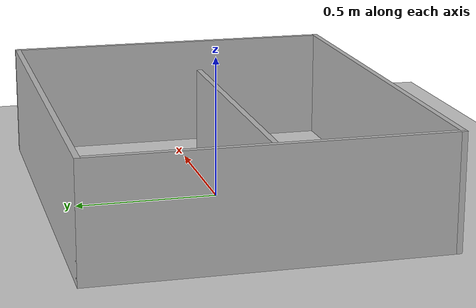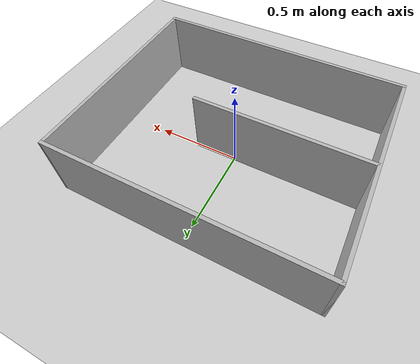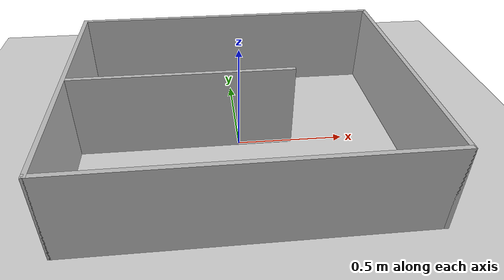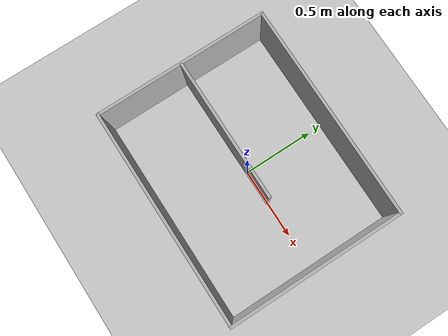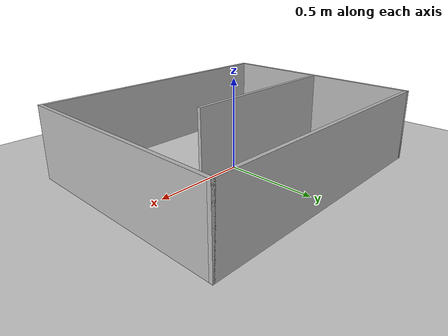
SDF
<sdf version="1.8">
 <world name="demo">
  <plugin filename="gz-sim-physics-system" name="gz::sim::systems::Physics"/>
  <plugin filename="gz-sim-sensors-system" name="gz::sim::systems::Sensors">
   <render_engine>ogre2</render_engine>
  </plugin>
  <plugin filename="gz-sim-scene-broadcaster-system" name="gz::sim::systems::SceneBroadcaster"/>
  <plugin filename="gz-sim-user-commands-system" name="gz::sim::systems::UserCommands"/>
  <light name="sun" type="directional">
   <pose>0 0 10 0 0 0</pose>
   <diffuse>0.8 0.8 0.8 1</diffuse>
   <specular>0.2 0.2 0.2 1</specular>
   <attenuation>
    <range>1000</range>
    <constant>0.9</constant>
    <linear>0.01</linear>
    <quadratic>0.001</quadratic>
   </attenuation>
   <direction>-0.5 0.1 -0.9</direction>
  </light>
  <model name="ground_plane">
   <static>true</static>
   <link name="link">
    <collision name="collision">
     <geometry><plane><normal>0 0 1</normal><size>100 100</size></plane></geometry>
    </collision>
    <visual name="visual">
     <geometry><plane><normal>0 0 1</normal><size>100 100</size></plane></geometry>
     <material>
      <ambient>0.8 0.8 0.8 1</ambient>
      <diffuse>0.8 0.8 0.8 1</diffuse>
      <specular>0.8 0.8 0.8 1</specular>
     </material>
    </visual>
   </link>
  </model>
  <model name="wall_north">
   <pose>0 0.6 0.2 0 0 0</pose>
   <static>true</static>
   <link name="link">
    <collision name="collision"><geometry><box><size>1.52 0.02 0.4</size></box></geometry></collision>
    <visual name="visual"><geometry><box><size>1.52 0.02 0.4</size></box></geometry></visual>
   </link>
  </model>
  <model name="wall_south">
   <pose>0 -0.6 0.2 0 0 0</pose>
   <static>true</static>
   <link name="link">
    <collision name="collision"><geometry><box><size>1.52 0.02 0.4</size></box></geometry></collision>
    <visual name="visual"><geometry><box><size>1.52 0.02 0.4</size></box></geometry></visual>
   </link>
  </model>
  <model name="wall_east">
   <pose>0.75 0 0.2 0 0 1.5708</pose>
   <static>true</static>
   <link name="link">
    <collision name="collision"><geometry><box><size>1.22 0.02 0.4</size></box></geometry></collision>
    <visual name="visual"><geometry><box><size>1.22 0.02 0.4</size></box></geometry></visual>
   </link>
  </model>
  <model name="wall_west">
   <pose>-0.75 0 0.2 0 0 1.5708</pose>
   <static>true</static>
   <link name="link">
    <collision name="collision"><geometry><box><size>1.22 0.02 0.4</size></box></geometry></collision>
    <visual name="visual"><geometry><box><size>1.22 0.02 0.4</size></box></geometry></visual>
   </link>
  </model>
  <model name="wall_divider">
   <pose>-0.25 0 0.2 0 0 0</pose>
   <static>true</static>
   <link name="link">
    <collision name="collision"><geometry><box><size>1.0 0.02 0.4</size></box></geometry></collision>
    <visual name="visual"><geometry><box><size>1.0 0.02 0.4</size></box></geometry></visual>
   </link>
  </model>
 </world>
</sdf>
